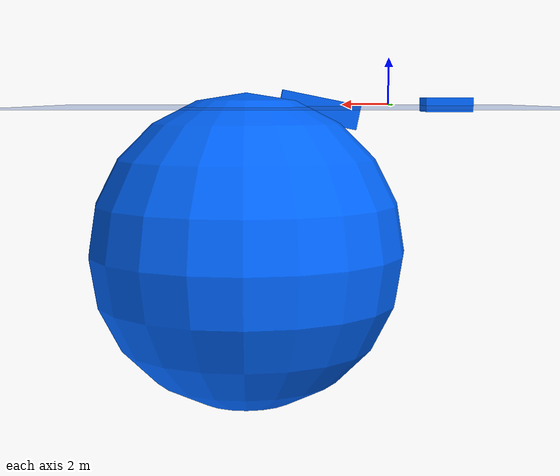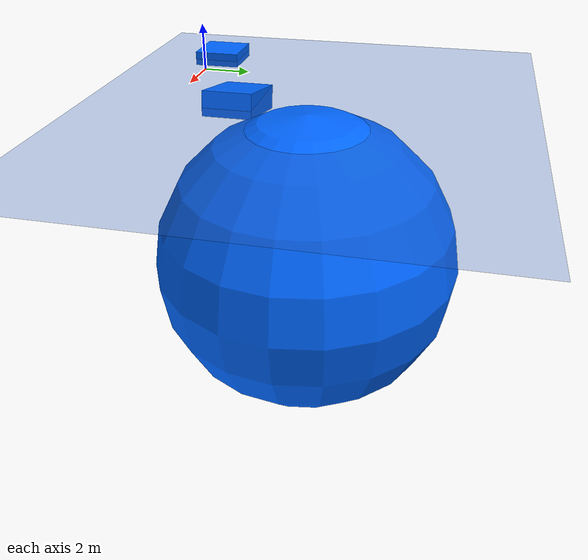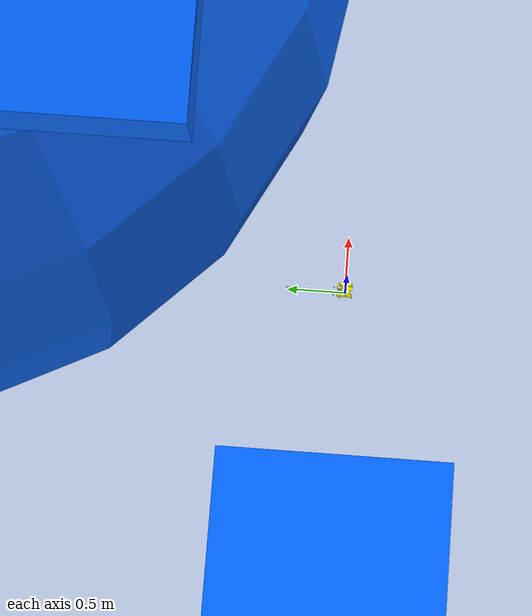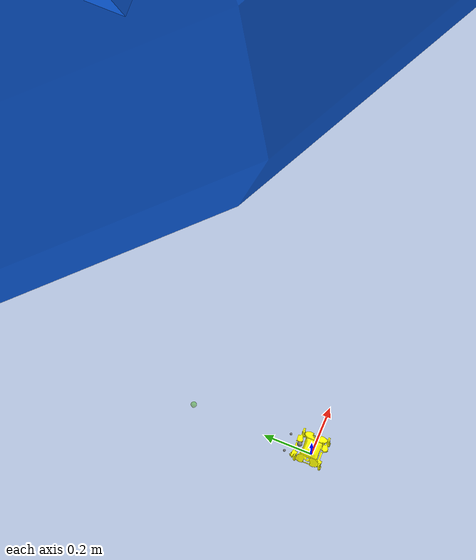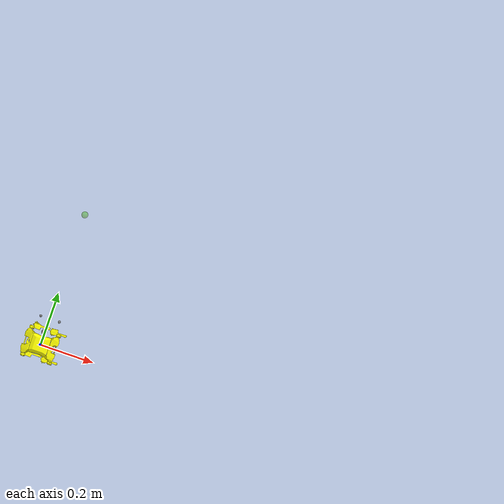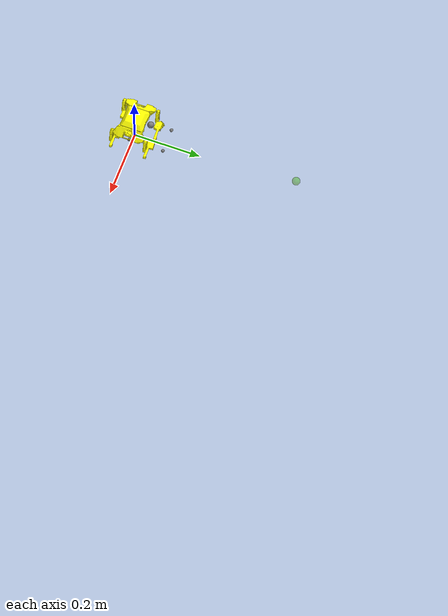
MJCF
<mujoco model="Bittle Quadruped">
  <!-- Include common settings -->
  <include file="../common.xml"/>

  <size memory="1M"/>

  <custom>
    <!-- agent -->
    <text name="task_transition" data="Quadruped|Biped|Walk|Scramble|Flip" />
    <numeric name="agent_planner" data="2 " />
    <numeric name="agent_horizon" data="1.5" /> <!-- Default 0.35 -->
    <numeric name="agent_timestep" data="0.01" />
    <numeric name="sampling_spline_points" data="20" /> <!-- Default 3 -->
    <numeric name="sampling_trajectories" data="128"/> <!-- Default 60 max is 128-->
    <numeric name="sampling_exploration" data="0.1" /> <!-- Default 0.04 -->
    <numeric name="gradient_spline_points" data="5" />

    <!-- residual -->
    <numeric name="residual_select_Gait" data="1"/>
    <text name="residual_list_Gait" data="Stand|Walk|"/>
    <numeric name="residual_select_Gait switch" data="1"/>
    <text name="residual_list_Gait switch" data="Manual|Automatic"/>
    <numeric name="residual_Cadence" data="6 0 10" />
    <numeric name="residual_Amplitude" data=".03 0 1" />
    <numeric name="residual_Duty ratio" data=".5 0 1"/>
    <numeric name="residual_Walk speed" data="3 0 10"/>
    <numeric name="residual_Walk turn" data="0 -2 2"/>
    <numeric name="residual_Heading" data="0 -3.14 3.14" />
  </custom>

  <visual>
    <headlight diffuse="0.6 0.6 0.6" ambient="0.3 0.3 0.3" specular="0 0 0"/>
    <global azimuth="0" elevation="-10"/>
  </visual>

  <statistic extent="1" center="0 0 .3"/>

  <worldbody>
    <light pos="0 1 1.5" dir="0 0 -1" diffuse="0.5 0.5 0.5" specular="0.3 0.3 0.3"
      directional="true" castshadow="false"/>
    <geom name="floor" size="0 0 0.1" pos="0 0 -0.01" type="plane" material="blue_grid"/>
    <body name="goal" mocap="true" pos="0 0.5 0.056">
      <geom size="0.012" contype="0" conaffinity="0" rgba="0 .5 0 .5" group="2"/>
    </body>

    <body name="box" mocap="true" pos="-2.5 0 0">
      <geom name="box" class="prop" size="1 1 0.3"/>
    </body>
    <geom name="ramp" class="prop" pos="3.13 2.5 -.18" size="1.6 1 .5" euler="0 -0.2 0"/>
    <geom name="hill" class="prop" pos="6 6 -5.5" size="6" type="sphere"/>
  </worldbody>

  <default>
    <default class="torque">
      <general gainprm="40" ctrllimited="true" ctrlrange="-1 1"/>
    </default>
    <default class="task">
      <site rgba="1 0 0 1" size=".02" group="5"/>
      <default class="flight">
        <site rgba="1 .3 .3 1" size="0.019" group="5"/>
      </default>
      <default class="stance">
        <site rgba=".3 1 .3 1" size=".018" group="4"/>
      </default>
    </default>
    <default class="prop">
      <geom type="box" rgba="0 0.4 1 1"/>
    </default>
  </default>

  <!-- Include the Bittle robot physics model -->
  <include file="bittle_scaled.xml" />

  <actuator>
    <position name="left-front-shoulder-joint" joint="left-front-shoulder-joint" ctrllimited="true"   ctrlrange="-1 1" gear="1" forcelimited="true" forcerange="-0.55 0.55"/>
    <position name="left-front-knee-joint" joint="left-front-knee-joint" ctrllimited="true"           ctrlrange="-1 1" gear="1" forcelimited="true" forcerange="-0.55 0.55"/>
    <position name="left-back-shoulder-joint" joint="left-back-shoulder-joint" ctrllimited="true"     ctrlrange="-1 1" gear="1" forcelimited="true" forcerange="-0.55 0.55"/>
    <position name="left-back-knee-joint" joint="left-back-knee-joint" ctrllimited="true"             ctrlrange="-1 1" gear="1" forcelimited="true" forcerange="-0.55 0.55"/>
    <position name="right-back-shoulder-joint" joint="right-back-shoulder-joint" ctrllimited="true"   ctrlrange="-1 1" gear="1" forcelimited="true" forcerange="-0.55 0.55"/>
    <position name="right-back-knee-joint" joint="right-back-knee-joint" ctrllimited="true"           ctrlrange="-1 1" gear="1" forcelimited="true" forcerange="-0.55 0.55"/>
    <position name="right-front-shoulder-joint" joint="right-front-shoulder-joint" ctrllimited="true" ctrlrange="-1 1" gear="1" forcelimited="true" forcerange="-0.55 0.55"/>
    <position name="right-front-knee-joint" joint="right-front-knee-joint" ctrllimited="true"         ctrlrange="-1 1" gear="1" forcelimited="true" forcerange="-0.55 0.55"/>
  </actuator>

  <sensor>
    <!-- cost -->
    <user name="Upright" dim="3" user="6 2 0 6 0.05" />
    <user name="Height" dim="1" user="6 .25 0 3 0.04" />
    <user name="Position" dim="3" user="2 0.2 0 0.5 0.1" />
    <user name="Gait" dim="4" user="6 .5 0 10 0.03" />
    <user name="Balance" dim="2" user="2 0.2 0 0.3 0.1" />
    <user name="Effort" dim="8" user="0 0.01 0.0 0.1" />
    <user name="Posture" dim="8" user="0 0.02 0.0 0.1" />
    <user name="Orientation" dim="2" user="0 0 0 .03" />
    <user name="Angmom" dim="3" user="0 0 0 .03" />

    <!-- Joint and actuator sensors -->
    <actuatorpos name="left-front-shoulder-joint_p" actuator="left-front-shoulder-joint" />
    <actuatorvel name="left-front-shoulder-joint_v" actuator="left-front-shoulder-joint" />
    <actuatorpos name="left-front-knee-joint_p" actuator="left-front-knee-joint" />
    <actuatorvel name="left-front-knee-joint_v" actuator="left-front-knee-joint" />
    <actuatorpos name="left-back-shoulder-joint_p" actuator="left-back-shoulder-joint" />
    <actuatorvel name="left-back-shoulder-joint_v" actuator="left-back-shoulder-joint" />
    <actuatorpos name="left-back-knee-joint_p" actuator="left-back-knee-joint" />
    <actuatorvel name="left-back-knee-joint_v" actuator="left-back-knee-joint" />
    <actuatorpos name="right-back-shoulder-joint_p" actuator="right-back-shoulder-joint" />
    <actuatorvel name="right-back-shoulder-joint_v" actuator="right-back-shoulder-joint" />
    <actuatorpos name="right-back-knee-joint_p" actuator="right-back-knee-joint" />
    <actuatorvel name="right-back-knee-joint_v" actuator="right-back-knee-joint" />
    <actuatorpos name="right-front-shoulder-joint_p" actuator="right-front-shoulder-joint" />
    <actuatorvel name="right-front-shoulder-joint_v" actuator="right-front-shoulder-joint" />
    <actuatorpos name="right-front-knee-joint_p" actuator="right-front-knee-joint" />
    <actuatorvel name="right-front-knee-joint_v" actuator="right-front-knee-joint" />

    <!-- Joint angle sensors -->
      <!-- Joint‐angle sensors -->
    <jointpos name="lf_shoulder_angle"  joint="left-front-shoulder-joint"/>
    <jointpos name="lf_knee_angle"      joint="left-front-knee-joint"/>
    <jointpos name="lb_shoulder_angle"  joint="left-back-shoulder-joint"/>
    <jointpos name="lb_knee_angle"      joint="left-back-knee-joint"/>
    <jointpos name="rf_shoulder_angle"  joint="right-front-shoulder-joint"/>
    <jointpos name="rf_knee_angle"      joint="right-front-knee-joint"/>
    <jointpos name="rb_shoulder_angle"  joint="right-back-shoulder-joint"/>
    <jointpos name="rb_knee_angle"      joint="right-back-knee-joint"/>

    <!-- IMU sensors -->
    <framequat name="orientation" objtype="site" noise="0.00" objname="imu" />
    <gyro name="angular-velocity" site="imu" noise="0.00" cutoff="34.9" />

    <!-- trace -->
    <!--framepos name="trace0" objtype="site" objname="head"/-->
    <framepos name="torso_pos" objtype="site" objname="imu" />

    <!-- residual -->
    <subtreecom    name="torso_subtreecom" body="root"/>
    <subtreelinvel name="torso_subtreelinvel" body="root"/>
    <subtreelinvel name="torso_angmom" body="root"/>
  </sensor>

<keyframe>
  <key name="home"
       qpos="0 0 0.085
             1 0 0 0
             0.56 0.56
             0.56 0.56
             0.56 0.56
             0.56 0.56"/>
  <key name="crouch"
       qpos="0 0 0.6
             1 0 0 0
             -0.5 -0.5
             -0.5 -0.5
             -0.5 -0.5
             -0.5 -0.5"/>
</keyframe>
</mujoco>

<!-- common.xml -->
<mujoco>

  <visual>
    <headlight ambient=".4 .4 .4" diffuse=".8 .8 .8" specular="0.1 0.1 0.1"/>
    <map znear=".01"/>
    <quality shadowsize="2048"/>
    <global elevation="-.25" />
  </visual>

  <asset>
    <texture name="blue_grid" type="2d" builtin="checker" rgb1=".02 .14 .44" rgb2=".27 .55 1" width="300" height="300" mark="edge" markrgb="1 1 1"/>
    <material name="blue_grid" texture="blue_grid" texrepeat="1 1" texuniform="true" reflectance=".2"/>

    <texture name="grey_grid" type="2d" builtin="checker" rgb1=".26 .26 .26" rgb2=".6 .6 .6" width="300" height="300" mark="edge" markrgb="1 1 1"/>
    <material name="grey_grid" texture="grey_grid" texrepeat="1 1" texuniform="true" reflectance=".2"/>
    <texture name="skybox" type="skybox" builtin="gradient" rgb1=".66 .79 1" rgb2=".9 .91 .93" width="800" height="800"/>

    <material name="self" rgba=".7 .5 .3 1"/>
    <material name="self_default" rgba=".7 .7 .4 1"/>
    <material name="self_highlight" rgba="0 .5 .3 1"/>
    <material name="effector" rgba=".7 .4 .2 1"/>
    <material name="effector_default" rgba=".7 .4 .2 1"/>
    <material name="effector_highlight" rgba="0 .5 .3 1"/>
    <material name="decoration" rgba=".2 .6 .3 1"/>
    <material name="eye" rgba="0 .2 1 1"/>
    <material name="target" rgba=".6 .3 .3 1"/>
    <material name="target_default" rgba=".6 .3 .3 1"/>
    <material name="target_highlight" rgba=".6 .3 .3 .4"/>
    <material name="site" rgba=".5 .5 .5 .3"/>
  </asset>
</mujoco>

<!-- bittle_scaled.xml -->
<mujoco model="bittle">
  <compiler angle="radian" meshdir="assets" />

  <option cone="elliptic" gravity="0 0 -9.81" />

  <default>
    <joint limited="true" damping="0.01" armature="0.01" frictionloss="0.1" />
    <equality solref="0.01 1.1" />
    <default class="visualgeom">
      <geom material="visualgeom" condim="1" contype="1" conaffinity="15" friction="0.9 0.02 0.01" />
    </default>
    <default class="footL">
      <geom type="sphere" size="0.005" pos="-0.049 -0.00175 -0.0825" priority="1" solimp="0.015 1 0.031" condim="6" friction="0.8 0.02 0.01" />
      </default>
    <default class="footR">
      <geom type="sphere" size="0.005" pos="0.049 -0.00175 -0.0825" priority="1" solimp="0.015 1 0.031" condim="6" friction="0.8 0.02 0.01" />
      </default>
  </default>

  <asset>
    <mesh name="base_frame.001" file="assets/base_frame.001.obj" scale="0.1 0.1 0.1"/>
    <mesh name="battery.001" file="assets/battery.001.obj" scale="0.1 0.1 0.1"/>
    <mesh name="cover.001" file="assets/cover.001.obj" scale="0.1 0.1 0.1"/>
    <mesh name="left_knee.002" file="assets/left_knee.002.obj" scale="0.1 0.1 0.1"/>
    <mesh name="shoulder.004" file="assets/shoulder.004.obj" scale="0.1 0.1 0.1"/>
    <mesh name="left_knee.003" file="assets/left_knee.003.obj" scale="0.1 0.1 0.1"/>
    <mesh name="shoulder.007" file="assets/shoulder.007.obj" scale="0.1 0.1 0.1"/>
    <mesh name="right_knee.002" file="assets/right_knee.002.obj" scale="0.1 0.1 0.1"/>
    <mesh name="shoulder.005" file="assets/shoulder.005.obj" scale="0.1 0.1 0.1"/>
    <mesh name="right_knee.003" file="assets/right_knee.003.obj" scale="0.1 0.1 0.1"/>
    <mesh name="shoulder.006" file="assets/shoulder.006.obj" scale="0.1 0.1 0.1"/>
    <material name="visualgeom" rgba="1.0 1.0 0.0 1" />
  </asset>

  <worldbody>
    <body name="root" pos="0 0 0.09239305602569667" quat="1 0 0 0">
      <site name="imu" size="0.001" pos="0 0 0" />
      <site name="head" pos="0 .05 0.01" size="0.01"/>
      <freejoint/>
      <inertial pos="0 -0.002 -0.002" mass="0.165" diaginertia="0.001 0.001 0.001" />
      <geom name="base_frame_c" type="mesh" mesh="base_frame.001" contype="1" conaffinity="15" group="1" class="visualgeom" />
      <geom type="mesh" rgba="1.0 1.0 0.0 1" mesh="base_frame.001" />
      <geom name="battery_c" pos="0.000047 -0.000917 -0.004848" quat="1 0 0 0" type="mesh" mesh="battery.001" contype="1" conaffinity="15" group="1" class="visualgeom" />
      <geom type="mesh" rgba="0.0 0.0 0.0 1" mesh="battery.001" pos="0.000047 -0.000917 -0.004848" quat="1 0 0 0" />
      <geom name="cover_c" pos="0.00014 0 0.01251" quat="1 0 0 0" type="mesh" mesh="cover.001" contype="1" conaffinity="15" group="1" class="visualgeom" />
      <geom type="mesh" rgba="0.0 0.0 0.0 1" mesh="cover.001" pos="0.00014 0 0.01251" quat="1 0 0 0" />
  <body name="left-back-shoulder-link" pos="-0.044596 -0.051923 -0.002102" quat="0.499998 0.5 -0.500002 -0.5">
        <inertial pos="0 -0.024575 0.004372" quat="0.707107 0.707107 0 0" mass="0.006" diaginertia="0.00044 0.00044 2e-05" />
        <joint name="left-back-shoulder-joint" pos="0 0 0" axis="0 0 1" range="-1.5708 1.6" actuatorfrcrange="-1000 1000" />
        <geom name="left_back_shoulder_c" pos="0 -0.024575 0.004372" quat="0.499998 -0.5 0.5 0.500002" type="mesh" mesh="shoulder.004" contype="1" conaffinity="15"  group="1" class="visualgeom" />
        <geom type="mesh" rgba="1.0 1.0 0.0 1" mesh="shoulder.004" pos="0 -0.024575 0.004372" quat="0.499998 -0.5 0.5 0.500002" />
        <body name="left-back-knee-link" pos="0 -0.049172 0">
          <inertial pos="-0.008998 0 -0.014638" quat="0.385725 0.189855 0.608868 0.666671" mass="0.017" diaginertia="0.000836537 0.000627558 0.000415905" />
          <joint name="left-back-knee-joint" pos="0 0 0" axis="0 0 1" range="-1.22173 1.48353" actuatorfrcrange="-1000 1000" />
          <geom name="left_back_knee_c" pos="-0.008998 0 -0.014638" quat="0.499998 -0.5 0.5 0.500002" type="mesh" mesh="left_knee.002" contype="1" conaffinity="15"  group="1" class="visualgeom" />
          <geom type="mesh" rgba="0.0 0.0 0.0 1" mesh="left_knee.002" pos="-0.008998 0 -0.014638" quat="0.499998 -0.5 0.5 0.500002" />
         <geom name="left_back_foot" class="footL" />
         <site name="left_back_foot" pos="-0.049 -0.00175 -0.0825" type="sphere" size="0.005"/>
        </body>
      </body>
      <body name="left-front-shoulder-link" pos="-0.044596 0.052264 -0.002102" quat="0.499998 0.5 -0.500002 -0.5">
        <inertial pos="0 -0.024575 0.004372" quat="0.707107 0.707107 0 0" mass="0.006" diaginertia="0.00044 0.00044 2e-05" />
        <joint name="left-front-shoulder-joint" pos="0 0 0" axis="0 0 1" range="-1.5708 1.6" actuatorfrcrange="-1000 1000" />
        <geom name="left_front_shoulder_c" pos="0 -0.024575 0.004372" quat="0.499998 -0.5 0.5 0.500002" type="mesh" mesh="shoulder.007" contype="1" conaffinity="15"  group="1" class="visualgeom" />
        <geom type="mesh" rgba="1.0 1.0 0.0 1" mesh="shoulder.007" pos="0 -0.024575 0.004372" quat="0.499998 -0.5 0.5 0.500002" />
        <body name="left-front-knee-link" pos="6e-06 -0.049172 0">
          <inertial pos="-0.009232 0 -0.014614" quat="0.648853 -0.0696517 0.415405 0.633701" mass="0.017" diaginertia="0.000703116 0.000604252 0.000572632" />
          <joint name="left-front-knee-joint" pos="0 0 0" axis="0 0 1" range="-1.22173 1.48353" actuatorfrcrange="-1000 1000" />
          <geom name="left_front_knee_c" pos="-0.009232 0 -0.014614" quat="0.499998 -0.5 0.5 0.500002" type="mesh" mesh="left_knee.003" contype="1" conaffinity="15"  group="1" class="visualgeom" />
          <geom type="mesh" rgba="0.0 0.0 0.0 1" mesh="left_knee.003" pos="-0.009232 0 -0.014614" quat="0.499998 -0.5 0.5 0.500002" />
         <geom name="left_front_foot" class="footL"/>
         <site name="left_front_foot" pos="-0.049 -0.00175 -0.0825" type="sphere" size="0.005"/>
        </body>
      </body>
      <body name="right-back-shoulder-link" pos="0.045149 -0.051923 -0.002102" quat="0.499998 -0.5 0.500002 -0.5">
        <inertial pos="0 0.024575 0.00777" quat="0.707107 0.707107 0 0" mass="0.006" diaginertia="0.00044 0.00044 2e-05" />
        <joint name="right-back-shoulder-joint" pos="0 0 0" axis="0 0 -1" range="-1.5708 1.6" actuatorfrcrange="-1000 1000" />
        <geom name="right_back_shoulder_c" pos="0 0.024575 0.00777" quat="0.499998 0.5 -0.5 0.500002" type="mesh" mesh="shoulder.005" contype="1" conaffinity="15"  group="1" class="visualgeom" />
        <geom type="mesh" rgba="1.0 1.0 0.0 1" mesh="shoulder.005" pos="0 0.024575 0.0077" quat="0.499998 0.5 -0.5 0.500002" />
        <body name="right-back-knee-link" pos="0.000015 0.049938 0.003996" quat="1.32679e-06 0 0 1">
          <inertial pos="0.008426 -0.000238 -0.01382" quat="0.64714 0.175903 0.606664 0.42688" mass="0.017" diaginertia="0.000676185 0.000616918 0.000596897" />
          <joint name="right-back-knee-joint" pos="0 0 0" axis="0 0 -1" range="-1.22173 1.48353" actuatorfrcrange="-1000 1000" />
          <geom name="right_back_knee_c" pos="0.008426 -0.000238 -0.01382" quat="0.499998 -0.5 -0.5 -0.500002" type="mesh" mesh="right_knee.002" contype="1" conaffinity="15"  group="1" class="visualgeom" />
          <geom type="mesh" rgba="0.0 0.0 0.0 1" mesh="right_knee.002" pos="0.008426 -0.000238 -0.01382" quat="0.499998 -0.5 -0.5 -0.500002" />
         <geom name="right_back_foot" class="footR" />
         <site name="right_back_foot" pos="0.049 -0.00175 -0.0825" type="sphere" size="0.005"/>
        </body>
      </body>
      <body name="right-front-shoulder-link" pos="0.045149 0.052264 -0.002102" quat="0.499998 -0.5 0.500002 -0.5">
        <inertial pos="0 0.024575 0.00777" quat="0.707107 0.707107 0 0" mass="0.006" diaginertia="0.00044 0.00044 2e-05" />
        <joint name="right-front-shoulder-joint" pos="0 0 0" axis="0 0 -1" range="-1.5708 1.6" actuatorfrcrange="-1000 1000" />
        <geom name="right_front_shoulder_c" pos="0 0.024575 0.00777" quat="0.499998 0.5 -0.5 0.500002" type="mesh" mesh="shoulder.006" contype="1" conaffinity="15"  group="1" class="visualgeom" />
        <geom type="mesh" rgba="1.0 1.0 0.0 1" mesh="shoulder.006" pos="0 0.024575 0.00777" quat="0.499998 0.5 -0.5 0.500002" />
        <body name="right-front-knee-link" pos="6e-06 0.049938 0.003996" quat="1.32679e-06 0 0 1">
          <inertial pos="0.009497 -0.000238 -0.01382" quat="0.64714 0.175903 0.606664 0.42688" mass="0.017" diaginertia="0.000676185 0.000616918 0.000596897" />
          <joint name="right-front-knee-joint" pos="0 0 0" axis="0 0 -1" range="-1.22173 1.48353" actuatorfrcrange="-1000 1000" />
         <geom name="right_front_knee_c" pos="0.009497 -0.000238 -0.01382" quat="0.499998 -0.5 -0.5 -0.500002" type="mesh" mesh="right_knee.003" contype="1" conaffinity="15"  group="1" class="visualgeom" />
          <geom type="mesh" rgba="0.0 0.0 0.0 1" mesh="right_knee.003" pos="0.009497 -0.000238 -0.01382" quat="0.499998 -0.5 -0.5 -0.500002" />
         <geom name="right_front_foot" class="footR"/>
         <site name="right_front_foot" pos="0.049 -0.00175 -0.0825" type="sphere" size="0.005"/>
        </body>
      </body>
    </body>
  </worldbody>
</mujoco>
